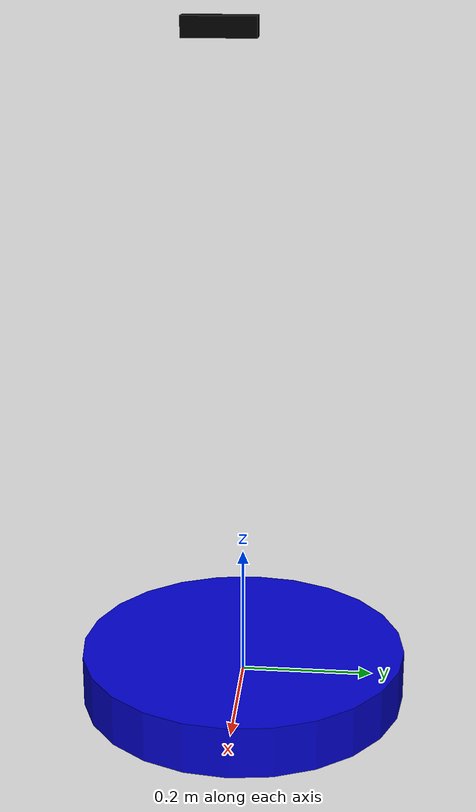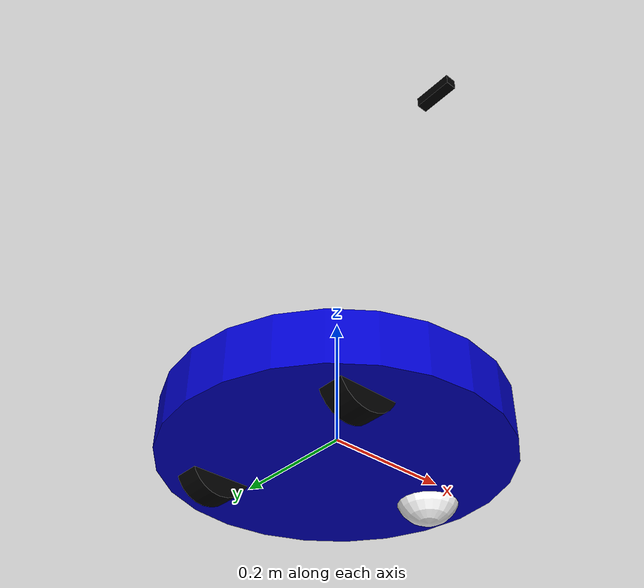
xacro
<?xml version="1.0"?>
<robot xmlns:xacro="http://www.ros.org/wiki/xacro" name="my_robot">

    <material name="blue">
        <color rgba="0 0 0.8 1" />
    </material>
    <material name="black">
        <color rgba="0 0 0 1" />
    </material>
    <material name="white">
        <color rgba="1 1 1 1" />
    </material>

    <link name="base_link">
        <visual>
            <geometry>
                <cylinder radius="0.25" length="0.08" />
            </geometry>
            <material name="blue" />
        </visual>
        <collision>
            <geometry>
                <cylinder radius="0.25" length="0.08" />
            </geometry>
        </collision>
        <inertial>
            <mass value="2.0" />
            <inertia ixx="0.03" ixy="0" ixz="0" iyy="0.03" iyz="0" izz="0.06" />
        </inertial>
    </link>

    <link name="left_wheel">
        <visual>
            <geometry>
                <cylinder radius="0.05" length="0.04" />
            </geometry>
            <material name="black" />
        </visual>
        <collision>
            <geometry>
                <cylinder radius="0.05" length="0.04" />
            </geometry>
        </collision>
        <inertial>
            <mass value="0.2" />
            <inertia ixx="0.001" ixy="0" ixz="0" iyy="0.001" iyz="0" izz="0.001" />
        </inertial>
    </link>

    <joint name="left_wheel_joint" type="continuous">
        <parent link="base_link" />
        <child link="left_wheel" />
        <origin xyz="-0.1 0.15 -0.02" rpy="-1.5708 0 0" />
        <axis xyz="0 0 1" />
    </joint>

    <link name="right_wheel">
        <visual>
            <geometry>
                <cylinder radius="0.05" length="0.04" />
            </geometry>
            <material name="black" />
        </visual>
        <collision>
            <geometry>
                <cylinder radius="0.05" length="0.04" />
            </geometry>
        </collision>
        <inertial>
            <mass value="0.2" />
            <inertia ixx="0.001" ixy="0" ixz="0" iyy="0.001" iyz="0" izz="0.001" />
        </inertial>
    </link>

    <joint name="right_wheel_joint" type="continuous">
        <parent link="base_link" />
        <child link="right_wheel" />
        <origin xyz="-0.1 -0.15 -0.02" rpy="-1.5708 0 0" />
        <axis xyz="0 0 1" />
    </joint>

    <link name="caster_wheel">
        <visual>
            <geometry>
                <sphere radius="0.05" />
            </geometry>
            <material name="white" />
        </visual>
        <collision>
            <geometry>
                <sphere radius="0.05" />
            </geometry>
        </collision>
        <inertial>
            <mass value="0.1" />
            <inertia ixx="0.0001" ixy="0" ixz="0" iyy="0.0001" iyz="0" izz="0.0001" />
        </inertial>
    </link>

    <joint name="caster_joint" type="fixed">
        <parent link="base_link" />
        <child link="caster_wheel" />
        <origin xyz="0.18 0 -0.02" rpy="0 0 0" />
    </joint>

    <gazebo reference="caster_wheel">
        <mu1>0.001</mu1>
        <mu2>0.001</mu2>
        <material>Gazebo/White</material>
    </gazebo>
    <gazebo reference="base_link">
        <material>Gazebo/Blue</material>
    </gazebo>

    <link name="camera_link">
        <visual>
            <origin xyz="0 0 0" rpy="0 0 0" />
            <geometry>
                <box size="0.025 0.09 0.025" />
            </geometry>
            <material name="black" />
        </visual>
        <collision>
            <origin xyz="0 0 0" rpy="0 0 0" />
            <geometry>
                <box size="0.025 0.09 0.025" />
            </geometry>
        </collision>
        <inertial>
            <mass value="0.072" />
            <inertia ixx="0.001" ixy="0" ixz="0" iyy="0.001" iyz="0" izz="0.001" />
        </inertial>
    </link>

    <joint name="camera_joint" type="fixed">
        <parent link="base_link" />
        <child link="camera_link" />
        <origin xyz="0.30 0 1.00" rpy="0 1.5708 0" />
    </joint>

    <gazebo reference="camera_link">
        <sensor name="d435_camera" type="camera">
            <update_rate>30</update_rate>
            <always_on>1</always_on>
            <visualize>true</visualize>
            <camera>
                <horizontal_fov>1.047</horizontal_fov>
                <image>
                    <width>640</width>
                    <height>480</height>
                    <format>R8G8B8</format>
                </image>
                <clip>
                    <near>0.1</near>
                    <far>10.0</far>
                </clip>
            </camera>
            <plugin name="camera_controller" filename="libgazebo_ros_camera.so">
                <alwaysOn>true</alwaysOn>
                <updateRate>0.0</updateRate>
                <cameraName>d435</cameraName>
                <imageTopicName>image_raw</imageTopicName>
                <cameraInfoTopicName>camera_info</cameraInfoTopicName>
                <frameName>camera_link</frameName>
                <hackBaseline>0.07</hackBaseline>
                <distortionK1>0.0</distortionK1>
                <distortionK2>0.0</distortionK2>
                <distortionK3>0.0</distortionK3>
                <distortionT1>0.0</distortionT1>
                <distortionT2>0.0</distortionT2>
            </plugin>
        </sensor>
    </gazebo>

    <gazebo>
        <plugin name="diff_drive" filename="libgazebo_ros_diff_drive.so">
            <ros>
                <namespace>/</namespace>
            </ros>

            <!-- Output -->
            <publish_odom>true</publish_odom>
            <publish_odom_tf>true</publish_odom_tf>
            <publish_wheel_tf>true</publish_wheel_tf>

            <odometry_frame>odom</odometry_frame>
            <robot_base_frame>base_link</robot_base_frame>

            <left_joint>left_wheel_joint</left_joint>
            <right_joint>right_wheel_joint</right_joint>
            <wheel_separation>0.40</wheel_separation>
            <wheel_diameter>0.10</wheel_diameter>
            <max_wheel_torque>20</max_wheel_torque>
            <max_wheel_acceleration>1.0</max_wheel_acceleration>
        </plugin>

        <plugin name="joint_state_publisher" filename="libgazebo_ros_joint_state_publisher.so">
            <ros>
                <remapping>~/out:=joint_states</remapping>
            </ros>
            <update_rate>30</update_rate>
            <joint_name>left_wheel_joint</joint_name>
            <joint_name>right_wheel_joint</joint_name>
        </plugin>

    </gazebo>

</robot>
